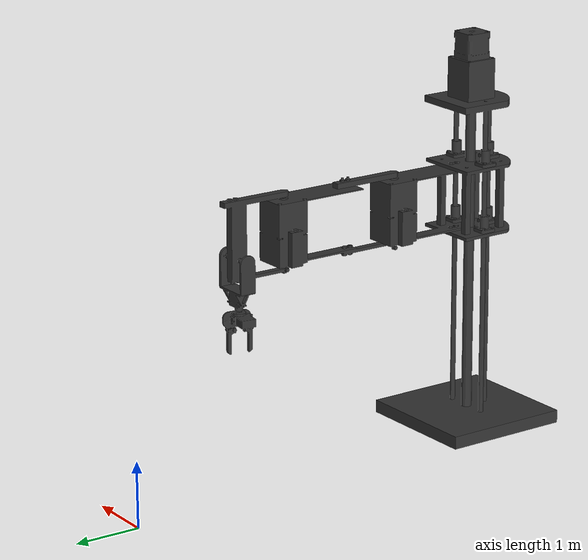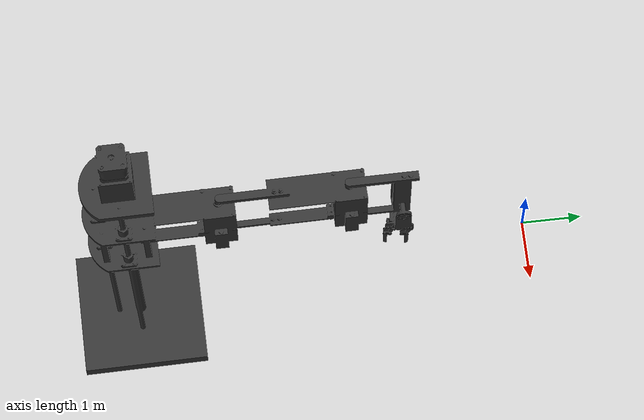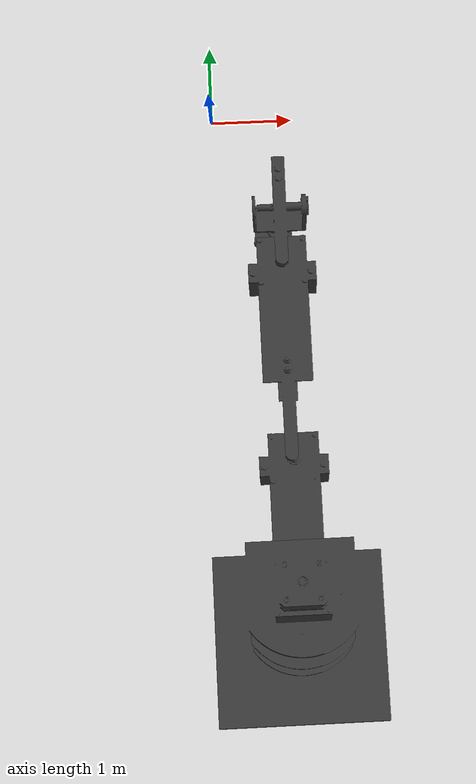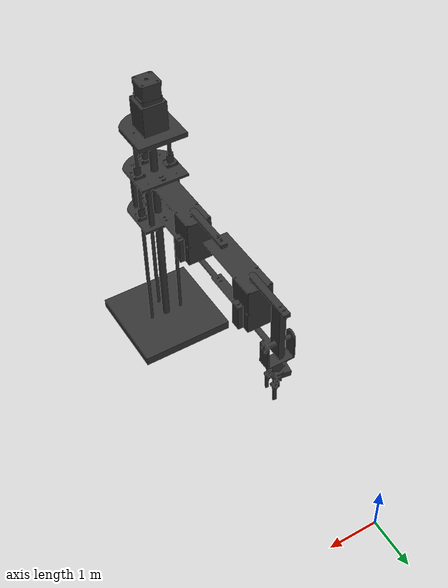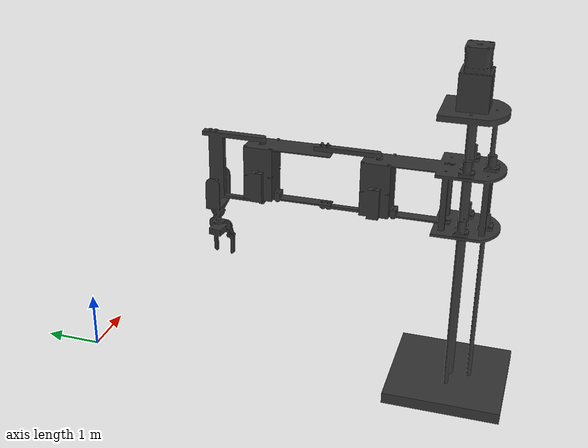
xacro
<?xml version="1.0"?>
<robot xmlns:xacro="http://www.ros.org/wiki/xacro" name="robot">

    <!-- Material Definitions -->
    <material name="grey">
        <color rgba="0.2 0.2 0.2 1"/>
    </material>

   <xacro:include filename="Testcollision.urdf.xacro" />

    <!-- Links and Joints -->
    <link name="world" />

    <link name="ground">
        <visual>
            <origin xyz="0 0 0" rpy="0 0 0" />
            <geometry>
                <mesh filename="package://robu/stl-file/base.stl" scale = "0.01 0.01 0.01" />
            </geometry>
            <material name="grey" />
        </visual>
        <collision>
            <origin xyz="0.9 -6.5 3.2" rpy="0 0 0" />
            <geometry>
                <box size="1.1 1.25 6.4" />
            </geometry>
        </collision>
        <inertial>
            <origin xyz="0 0 0" rpy="0 0 0" />
            <mass value="0" />
            <inertia ixx="0.01" ixy="0.0" ixz="0.0" iyy="0.01" iyz="0.0" izz="0.01" />
        </inertial>
    </link>

    <link name="crawler">
        <visual>
            <origin xyz="0 0 0" rpy="0 0 0" />
            <geometry>
                <mesh filename="package://robu/stl-file/crawler.stl" scale = "0.01 0.01 0.01" />
            </geometry>
            <material name="grey" />
        </visual>
        <collision>
            <origin xyz="7.175 -4.7 7.70" rpy="0 0 0" />
            <geometry>
                <box size="1.1 2 1.2" />
            </geometry>
        </collision>
        <inertial>
            <origin xyz="0 0 0" rpy="0 0 0" />
            <mass value="0" />
            <inertia ixx="0.01" ixy="0.0" ixz="0.0" iyy="0.01" iyz="0.0" izz="0.01" />
        </inertial>
    </link>

        <link name="arm">
        <visual>
            <origin xyz="0.05 1.90 0" rpy="0 0 0" />
            <geometry>
                <mesh filename="package://robu/stl-file/arm.stl" scale = "0.01 0.01 0.01" />
            </geometry>
            <material name="grey" />
        </visual>
        <collision>
            <origin xyz="0.08 1.25 0.05" rpy="0 0 0" />
            <geometry>
                <box size="1.1 2.5 1.2" />
            </geometry>
        </collision>
        <inertial>
            <origin xyz="0 0 0" rpy="0 0 0" />
            <mass value="0" />
            <inertia ixx="0.01" ixy="0.0" ixz="0.0" iyy="0.01" iyz="0.0" izz="0.01" />
        </inertial>
    </link>

        <link name="grabber">
        <visual>
            <origin xyz="0.083 0.15 -0.1" rpy="0 0 0" />
            <geometry>
                <mesh filename="package://robu/stl-file/grabber.stl" scale = "0.01 0.01 0.01" />
            </geometry>
            <material name="grey" />
        </visual>
        <collision>
            <origin xyz="0.1 0.6 -0.1" rpy="0 0 0" />
            <geometry>
                <box size="1.1 1.2 2.6" />
            </geometry>
        </collision>
        <inertial>
            <origin xyz="0 0 0" rpy="0 0 0" />
            <mass value="0" />
            <inertia ixx="0.01" ixy="0.0" ixz="0.0" iyy="0.01" iyz="0.0" izz="0.01" />
        </inertial>
    </link>

    <!-- Transformation: world to map -->
    <joint name="Ground_to_map" type="fixed">
        <parent link="world" />
        <child link="ground" />
        <origin rpy="0 0 0" xyz="0 0 0" />
    </joint>

    <!-- Transformation: ground to crawler -->
    <joint name="Ground_to_crawler" type="prismatic">
        <parent link="ground" />
        <child link="crawler" />
        <origin rpy="0 0 0" xyz="-6.275 -0.80 -4.00" />
        <axis xyz="0 0 1"/>
        <limit lower = "-2.80" upper = "0.60" velocity="1.00" effort="100"/>
    </joint>

        <!-- Transformation: crawler to arm -->
    <joint name="Crawler_to_arm" type="revolute">

        <parent link="crawler" />
        <child link="arm" />
        <origin rpy="0 0 0" xyz="7.10 -4.25 7.65" />
        <axis xyz="0 0 1" />
        <limit lower = "-2.09" upper = "2.09" velocity="100" effort="100"/>
        <!--dynmic damping="damping_value" friction="friction_value"/-->
    </joint>

        <!-- Transformation: arm to grabber -->
    <joint name="Arm_to_grabber" type="revolute">

        <parent link="arm" />
        <child link="grabber" />
        <origin rpy="0 0 0" xyz="-0.021 2 -0.573" />
        <axis xyz="0 0 1"/>
        <limit lower = "-2.09" upper = "2.09" velocity="100" effort="100"/>
        <!--dynmic damping="damping_value" friction="friction_value"/-->
    </joint>

</robot>

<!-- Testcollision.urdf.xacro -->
<robot xmlns:xacro="http://www.ros.org/wiki/xacro" >
    <!-- This file is not a robot in and of itself, it just contains some useful tags that could be included in any robot -->

   <!-- Specify some colours -->

   <material name="white">
       <color rgba="1 1 1 1"/>
   </material>

   <material name="orange">
       <color rgba="1 0.3 0.1 1"/>
   </material>

   <material name="blue">
       <color rgba="0.2 0.2 1 1"/>
   </material>

   <!-- Specify some standard inertial calculations https://en.wikipedia.org/wiki/List_of_moments_of_inertia -->
   <!-- These make use of xacro's mathematical functionality -->

   <xacro:macro name="inertial_sphere" params="mass radius *origin">
       <inertial>
           <xacro:insert_block name="origin"/>
           <mass value="${mass}" />
           <inertia ixx="${(2/5) * mass * (radius*radius)}" ixy="0.0" ixz="0.0"
                   iyy="${(2/5) * mass * (radius*radius)}" iyz="0.0"
                   izz="${(2/5) * mass * (radius*radius)}" />
       </inertial>
   </xacro:macro>

   <xacro:macro name="inertial_box" params="mass x y z *origin">
       <inertial>
           <xacro:insert_block name="origin"/>
           <mass value="${mass}" />
           <inertia ixx="${(1/12) * mass * (y*y+z*z)}" ixy="0.0" ixz="0.0"
                   iyy="${(1/12) * mass * (x*x+z*z)}" iyz="0.0"
                   izz="${(1/12) * mass * (x*x+y*y)}" />
       </inertial>
   </xacro:macro>

   <xacro:macro name="inertial_cylinder" params="mass length radius *origin">
       <inertial>
           <xacro:insert_block name="origin"/>
           <mass value="${mass}" />
           <inertia ixx="${(1/12) * mass * (3*radius*radius + length*length)}" ixy="0.0" ixz="0.0"
                   iyy="${(1/12) * mass * (3*radius*radius + length*length)}" iyz="0.0"
                   izz="${(1/2) * mass * (radius*radius)}" />
       </inertial>
   </xacro:macro>

</robot>
